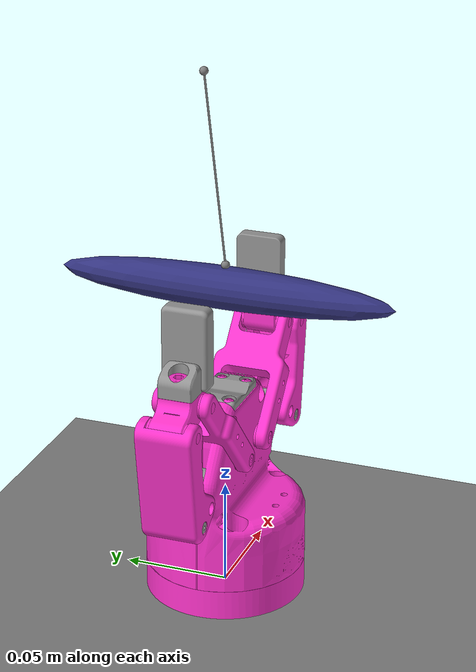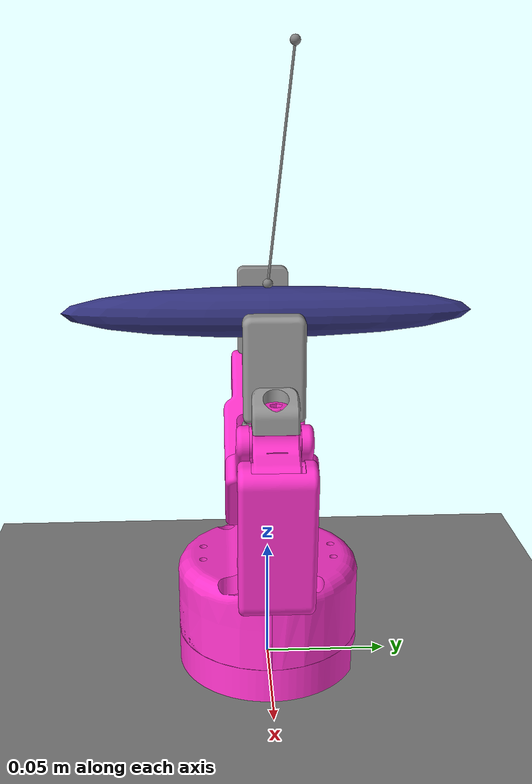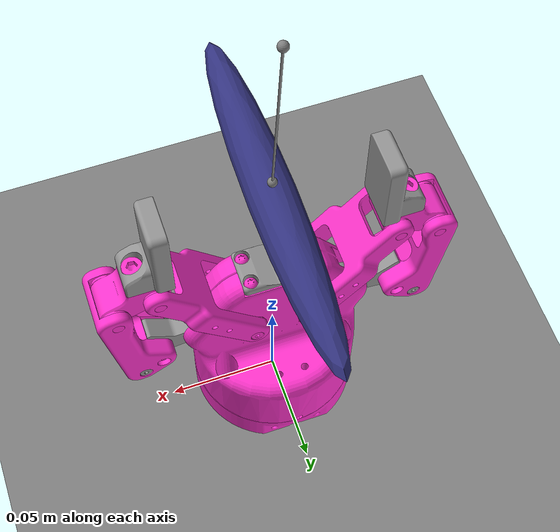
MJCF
<mujoco model="2f85 scene">
  <include file="2f85.xml"/>

  <!-- Add some fluid viscosity to prevent the hanging box from jiggling forever -->
  <option viscosity="0.5"/>

  <statistic center="0 0 0.05" extent="0.3"/>

  <visual>
    <headlight diffuse="0.6 0.6 0.6" ambient="0.3 0.3 0.3" specular="0 0 0"/>
    <rgba haze="0.15 0.25 0.35 1"/>
    <global azimuth="60" elevation="-20"/>
  </visual>

  <asset>
    <texture type="skybox" builtin="gradient" rgb1="0.3 0.5 0.7" rgb2="0 0 0" width="512" height="3072"/>
    <texture type="2d" name="groundplane" builtin="checker" mark="edge" rgb1="0.2 0.3 0.4" rgb2="0.1 0.2 0.3"
      markrgb="0.8 0.8 0.8" width="300" height="300"/>
    <material name="groundplane" texture="groundplane" texuniform="true" texrepeat="5 5" reflectance="0.2"/>
  </asset>

  <worldbody>
    <light pos="0 0 1"/>
    <light pos="0 -0.2 1" dir="0 0.2 -0.8" directional="true"/>
    <geom name="floor" size="0 0 0.05" type="plane"/>
    <site size="0.002" pos="0 0.01 0.25" name="anchor"/>

    <body name="ellipsoid" pos="0 0 0.15">
      <freejoint/>
      <geom type="ellipsoid" size="0.01 0.08 0.01" rgba="0.2 0.2 0.5 1" friction=".5" priority="1"/>
      <site size="0.002" pos="0 0 0.011" name="hook"/>
    </body>

  </worldbody>

  <tendon>
    <spatial limited="true" range="0 0.06" width="0.0005">
      <site site="hook"/>
      <site site="anchor"/>
    </spatial>
  </tendon>
</mujoco>

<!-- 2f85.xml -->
<mujoco model="Dual_wrist_camera">
  <compiler angle="radian" meshdir="assets" autolimits="true"/>

  <option cone="elliptic" impratio="10"/>

  <asset>

    <material name="metal" rgba="0.58 0.58 0.58 1"/>
    <material name="silicone" rgba="0.1882 0.1882 0.1882 1"/>
    <material name="black" rgba="0.149 0.149 0.149 1"/>
    <material name="white" rgba="1 0.2 0.8 1"/>

    <mesh file="base.stl"/>
    <mesh file="base_coupling.stl"/>
    <mesh file="c-a01-85-open.stl"/>
    <mesh file="driver.stl"/>
    <mesh file="coupler.stl"/>
    <mesh file="spring_link.stl"/>
    <mesh file="follower.stl"/>
    <mesh file="tongue.stl"/>
  </asset>

  <default>
    <default class="2f85">
      <mesh scale="0.001 0.001 0.001"/>
      <general biastype="affine"/>

      <joint axis="0 0 1"/>
      <default class="driver">
        <joint range="0 0.9" armature="0.005" damping="0.1" solimplimit="0.95 0.99 0.001" solreflimit="0.005 1"/>
      </default>
      <default class="follower">
        <joint range="-0.872664 0.9" armature="0.001"  solimplimit="0.95 0.99 0.001" solreflimit="0.005 1"/>
      </default>
      <default class="spring_link">
        <joint range="-0.29670597283 0.9" armature="0.001" stiffness="0.05" springref="2.62" damping="0.00125"/>
      </default>
      <default class="coupler">
        <joint range="-1.57 0" armature="0.001" solimplimit="0.95 0.99 0.001" solreflimit="0.005 1"/>
      </default>

      <default class="visual">
        <geom type="mesh" contype="0" conaffinity="0" group="2" material="white"/>
      </default>
      <default class="collision">
        <geom type="mesh" group="3"/>
        <default class="pad_box1">
          <geom mass="1e-6" type="box" pos="0.043258  0 0.12"  size="0.002 0.011 0.009375" friction="0.7"
            solimp="0.95 0.99 0.001" solref="0.004 1" priority="1" rgba="0.1 1 0.55 1"/>
        </default>
        <default class="pad_box2">
          <geom mass="1e-6" type="box" pos="0.043258 0 0.13875" size="0.002 0.011 0.009375" friction="0.6"
            solimp="0.95 0.99 0.001" solref="0.004 1" priority="1" rgba="0.45 0.45 0.45 1"/>
        </default>
      </default>
    </default>
  </default>

  <worldbody>
    <light directional="false" diffuse=".8 .8 .8" specular=".3 .3 .3" pos="0 0 3" dir="0 0 -1"/>

    <body name="base" childclass="2f85">
      <inertial mass="0.777441" pos="0 -2.70394e-05 0.0354675" quat="1 -0.00152849 0 0"
        diaginertia="0.000260285 0.000225381 0.000152708"/>
      <geom class="visual" pos="0 0 0.0108" quat="0 0 0 1"   mesh="base"/>
      <geom class="visual" pos="0 0 0.004" quat="1 -1 0 0"   mesh="base_coupling"/>
      <geom class="visual" pos="0 0 0.0108" quat="1 0 0 0"  material="metal" mesh="c-a01-85-open"/>
      <geom class="collision" mesh="base"/>
      <!-- Left-hand side 4-bar linkage -->
      <body name="left_driver" pos="-0.0306011 0.00475 0.0657045" quat="1 -1 0 0">
        <inertial mass="0.00899563" pos="0 0.0177547 0.00107314" quat="0.681301 0.732003 0 0"
            diaginertia="1.72352e-06 1.60906e-06 3.22006e-07"/>
        <joint name="left_driver_joint" class="driver"/>
        <geom class="visual" pos="0.0306011 0.0549045 -0.0047" quat="1 1 0 0"  material="metal" mesh="driver"/>
        <geom class="collision" pos="0.0306011 0.0549045 -0.0047" quat="1 1 0 0"   mesh="driver"/>
        <body name="left_coupler" pos="-0.0314249 0.00453223 -0.0102" quat="0 0 0 1">
          <inertial mass="0.0140974" pos="0 0.00301209 0.0232175" quat="0.705636 -0.0455904 0.0455904 0.705636"
          diaginertia="4.16206e-06 3.52216e-06 8.88131e-07"/>
          <geom class="visual" pos="-0.062026 -0.0503723 0.0055" quat="1 -1 0 0"   mesh="coupler"/>
          <geom class="collision" pos="-0.062026 -0.0503723 0.0055" quat="1 -1 0 0"  mesh="coupler"/>
        </body>
      </body>
      <body name="left_spring_link" pos="-0.0127 -0.012 0.07222" quat="1 -1 0 0">
        <inertial mass="0.0221642" pos="-8.65005e-09 0.0181624 0.0212658" quat="0.663403 -0.244737 0.244737 0.663403"
            diaginertia="8.96853e-06 6.71733e-06 2.63931e-06"/>
        <joint name="left_spring_link_joint" class="spring_link"/>
        <geom class="visual" pos="0.0127 0.06142 0.01205" quat="1 1 0 0" type="mesh"  mesh="spring_link"/>
        <geom class="collision" pos="0.0127 0.06142 0.01205" quat="1 1 0 0" type="mesh"  mesh="spring_link"/>
        <body name="left_follower" pos="-0.0382079 -0.0425003 0.00295" quat="0 -1 -1.90231e-05 0">
          <inertial mass="0.0125222" pos="0 -0.011046 0.0124786" quat="1 0.1664 0 0"
          diaginertia="2.67415e-06 2.4559e-06 6.02031e-07"/>
          <joint name="left_follower" class="follower"/>
          <geom class="visual" pos="0.0509079 -0.10392 -0.0091" quat="1 -1 0 0" type="mesh"  mesh="follower"/>
          <geom class="visual" pos="0.0509079 -0.10392 -0.0091" quat="1 -1 0 0" type="mesh" material="metal" mesh="tongue"/>
          <geom class="collision" pos="0.0509079 -0.10392 -0.0091" quat="1 -1 0 0" type="mesh"  mesh="follower"/>
          <geom class="collision" pos="0.0509079 -0.10392 -0.0091" quat="1 -1 0 0" type="mesh"  mesh="tongue"/>
          <body name="left_pad" pos="-0.0377897 -0.103916 -0.0091" quat="1 -1 0 0" >
          <site name="left_site" size="0.0001" pos="0.042 0 0.141"/>
            <geom class="pad_box1" name="left_pad1"/>
            <geom class="pad_box2" name="left_pad2"/>
          </body>
        </body>
      </body>
      <!-- Right-hand side 4-bar linkage -->
      <body name="right_driver" pos="0.0306011 -0.00475 0.0657045" quat="0 0 -1 1">
        <inertial mass="0.00899563" pos="2.96931e-12 0.0177547 0.00107314" quat="0.681301 0.732003 0 0"
        diaginertia="1.72352e-06 1.60906e-06 3.22006e-07"/>
        <joint name="right_driver_joint" class="driver"/>
        <geom class="visual" pos="0.0306011 0.0549045 -0.0047" quat="1 1 0 0" material="metal" mesh="driver"/>
        <geom class="collision" pos="0.0306011 0.0549045 -0.0047" quat="1 1 0 0"  mesh="driver"/>
        <body name="right_coupler" pos="-0.0314249 0.00453223 -0.0102" quat="0 0 0 1">
          <inertial mass="0.0140974" pos="0 0.00301209 0.0232175" quat="0.705636 -0.0455904 0.0455904 0.705636"
          diaginertia="4.16206e-06 3.52216e-06 8.88131e-07"/>
          <geom class="visual" pos="-0.062026 -0.0503723 0.0055" quat="1 -1 0 0"   mesh="coupler"/>
          <geom class="collision" pos="-0.062026 -0.0503723 0.0055" quat="1 -1 0 0"   mesh="coupler"/>
        </body>
      </body>
      <body name="right_spring_link" pos="0.0127 0.012 0.07222" quat="0 0 -1 1">
        <inertial mass="0.0221642" pos="-8.65005e-09 0.0181624 0.0212658" quat="0.663403 -0.244737 0.244737 0.663403"
        diaginertia="8.96853e-06 6.71733e-06 2.63931e-06"/>
        <joint name="right_spring_link_joint" class="spring_link"/>
        <geom class="visual" pos="0.0127 0.06142 0.01205" quat="1 1 0 0"   mesh="spring_link"/>
        <geom class="collision" pos="0.0127 0.06142 0.01205" quat="1 1 0 0"   mesh="spring_link"/>
        <body name="right_follower" pos="-0.0382079 -0.0425003 0.00295" quat="0 -1 0 0">
          <inertial mass="0.0125222" pos="0 -0.011046 0.0124786" quat="1 0.1664 0 0"
          diaginertia="2.67415e-06 2.4559e-06 6.02031e-07"/>
          <joint name="right_follower_joint" class="follower"/>
          <geom class="visual" pos="0.0509079 -0.10392 -0.0091" quat="1 -1 0 0"  material="metal" mesh="tongue"/>
          <geom class="visual" pos="0.0509079 -0.10392 -0.0091" quat="1 -1 0 0"   mesh="follower"/>
          <geom class="collision" pos="0.0509079 -0.10392 -0.0091" quat="1 -1 0 0"   mesh="tongue"/>
          <geom class="collision" pos="0.0509079 -0.10392 -0.0091" quat="1 -1 0 0"   mesh="follower"/>
          <body name="right_pad" pos="-0.0377897 -0.103916 -0.0091"   quat="1 -1 0 0" >
            <site name="right_site" size="0.0001" pos="0.042 0 0.141"/>

            <geom class="pad_box1" name="right_pad1"/>
            <geom class="pad_box2" name="right_pad2"/>
          </body>
        </body>
      </body>
    </body>
  </worldbody>

  <contact>
    <exclude body1="base" body2="left_driver"/>
    <exclude body1="base" body2="right_driver"/>
    <exclude body1="base" body2="left_spring_link"/>
    <exclude body1="base" body2="right_spring_link"/>
    <exclude body1="right_coupler" body2="right_follower"/>
    <exclude body1="left_coupler" body2="left_follower"/>
  </contact>

  <tendon>
    <fixed name="split">
      <joint joint="right_driver_joint" coef="0.485"/>
      <joint joint="left_driver_joint" coef="0.485"/>
    </fixed>
  </tendon>

  <equality>
    <connect anchor="-0.0179014 -0.00651468 0.0044" body1="right_follower" body2="right_coupler" solimp="0.95 0.99 0.001" solref="0.005 1"/>
    <connect anchor="-0.0179014 -0.00651468 0.0044" body1="left_follower" body2="left_coupler" solimp="0.95 0.99 0.001" solref="0.005 1"/>
    <joint joint1="right_driver_joint" joint2="left_driver_joint" polycoef="0 1 0 0 0" solimp="0.95 0.99 0.001"
    solref="0.005 1"/>
  </equality>

  <actuator>
    <general class="2f85" name="fingers_actuator" tendon="split" forcerange="-5 5" ctrlrange="0 255"
      gainprm="0.3137255 0 0" biasprm="0 -100 -10"/>

    <!-- Общий захват -->

    <motor name="right_finger_motor" joint="right_follower_joint" gear="10"/>

  </actuator>

  <sensor>
    <!--Cенсор силы.-->
    <!-- Он измеряет контактную силу, приложенную в точке-->
    <!--C помощью этого сенсора можно определять, когда палец касается объекта,
     котролировать силу сжатия, реализовать обратную связь в регуляторе-->
    <force name="left_contact" site="left_site"/>
    <force name="right_contact" site="right_site"/>

    <!-- Положение пальцев
    Чтобы знать, насколько пальцы сжались и где они находятся. -->
    <jointpos name="right_driver_pos" joint="right_driver_joint"/>
    <jointpos name="left_driver_pos" joint="left_driver_joint"/>

    <!-- Скорость движения пальцев
    Для D-компоненты ПД-регулятора. -->
    <jointvel name="right_driver_vel" joint="right_driver_joint"/>
    <jointvel name="left_driver_vel" joint="left_driver_joint"/>

  </sensor>

</mujoco>
